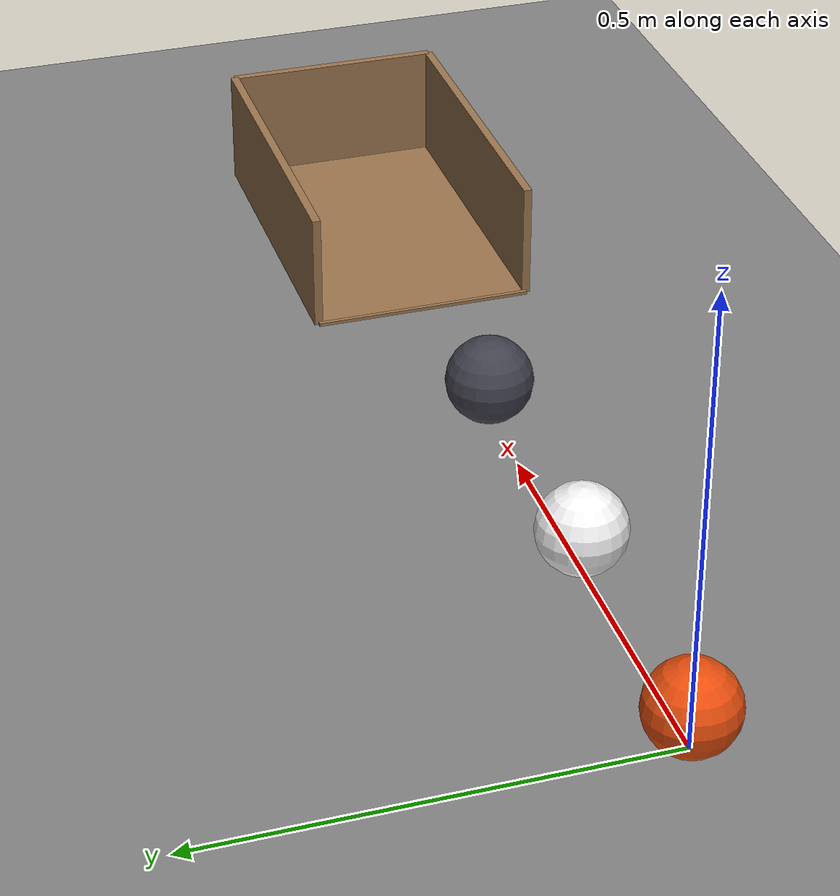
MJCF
<mujoco model="three_balls_rolling_into_a_cup">
  <compiler angle="radian"/>
  <option timestep="0.002"/>
  <worldbody>
    <geom name="floor" type="plane" size="4 4 0.1" friction="0.6 0.002 0.0005"/>
    <body name="ball1" pos="0 0 0.05">
      <freejoint/>
      <geom name="ball1" type="sphere" pos="0 0 0" size="0.05" mass="0.4" condim="6" friction="0.6 0.002 0.0005" solref="0.01 0.2" rgba="0.9 0.3 0.05 1"/>
    </body>
    <body name="ball2" pos="0.3 0 0.05">
      <freejoint/>
      <geom name="ball2" type="sphere" pos="0 0 0" size="0.05" mass="0.2" condim="6" friction="0.6 0.002 0.0005" solref="0.01 0.2" rgba="0.95 0.95 0.95 1"/>
    </body>
    <body name="ball3" pos="0.6 0 0.05">
      <freejoint/>
      <geom name="ball3" type="sphere" pos="0 0 0" size="0.05" mass="0.1" condim="6" friction="0.6 0.002 0.0005" solref="0.01 0.2" rgba="0.25 0.25 0.3 1"/>
    </body>
    <body name="cup">
      <geom name="cup_base" type="box" pos="1.05 0 0.002" size="0.2 0.13 0.002" friction="1 0.02 0.015" solref="0.01 1" rgba="0.6 0.45 0.3 1"/>
      <geom name="cup_near_wall" type="box" pos="0.85 0 0.002" size="0.005 0.13 0.002" friction="1 0.02 0.015" solref="0.01 1" rgba="0.6 0.45 0.3 1"/>
      <geom name="cup_far_wall" type="box" pos="1.25 0 0.07" size="0.005 0.13 0.07" friction="1 0.02 0.015" solref="0.01 1" rgba="0.6 0.45 0.3 1"/>
      <geom name="cup_left_wall" type="box" pos="1.05 0.13 0.07" size="0.2 0.005 0.07" friction="1 0.02 0.015" solref="0.01 1" rgba="0.6 0.45 0.3 1"/>
      <geom name="cup_right_wall" type="box" pos="1.05 -0.13 0.07" size="0.2 0.005 0.07" friction="1 0.02 0.015" solref="0.01 1" rgba="0.6 0.45 0.3 1"/>
    </body>
  </worldbody>
  <keyframe>
    <key name="start" qpos="0 0 0.05 1 0 0 0 0.3 0 0.05 1 0 0 0 0.6 0 0.05 1 0 0 0" qvel="1.6 0 0 0 32 0 0 0 0 0 0 0 0 0 0 0 0 0"/>
  </keyframe>
</mujoco>
